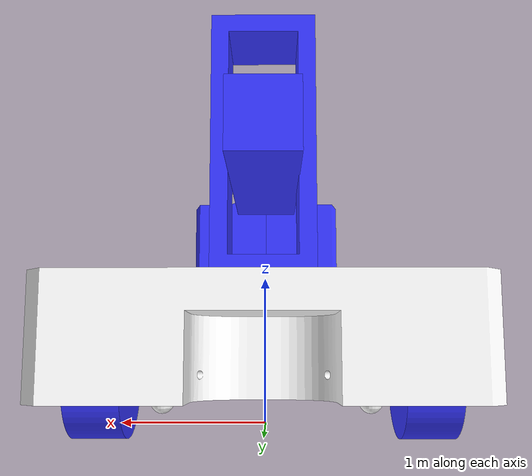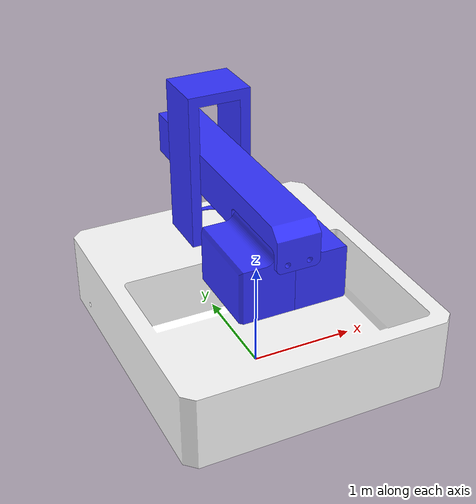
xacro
<?xml version="1.0"?>
<robot xmlns:xacro="http://www.ros.org/wiki/xacro" >
    <xacro:include filename="inertial_macros.xacro" />

    <material name="white">
        <color rgba="1 1 1 1" />
    </material>

    <material name="orange">
        <color rgba="1 0.3 0.1 1"/>
    </material>

    <material name="blue">
        <color rgba="0.2 0.2 1 1"/>
    </material>

    <material name="black">
        <color rgba="0 0 0 1"/>
    </material>

    <material name="red">
        <color rgba="1 0 0 1"/>
    </material>

    <!-- BASE LINK -->

    <link name="base_link">

    </link>

    <joint name="chassis_joint" type="fixed">
        <parent link="base_link"/>
        <child link="chassis"/>
        <origin xyz="0 0 0.1"/>
    </joint>

    <link name="chassis">
        <visual>
            <origin xyz="-1.25 1.5 0" rpy="0 0 0"/>
            <geometry>
                <mesh filename="file://$(find articubot_one)/description/dae/mainbody.dae" scale="0.01 0.01 0.01"/>
            </geometry>
            <material name="white"/>
        </visual>
        <collision>
            <origin xyz="-1.25 1.5 0" rpy="0 0 0"/>
            <geometry>
                <mesh filename="file://$(find articubot_one)/description/dae/mainbody.dae" scale="0.01 0.01 0.01"/>
            </geometry>
        </collision>
        <xacro:inertial_box mass="50.0" x="2.5" y="2.8" z="0.8">
            <origin xyz="0 0.1 0.5" rpy="0 0 0"/>
        </xacro:inertial_box>
    </link>
    <gazebo reference="chassis">
        <material>Gazebo/white</material>
    </gazebo>

    <!-- LEFT WHEEL -->

    <joint name="left_wheel_joint" type="continuous">
        <parent link="base_link"/>
        <child link="left_wheel"/>
        <origin xyz="-0.9 1.05 0.35"/>
        <axis xyz="1 0 0"/>
    </joint>

    <link name="left_wheel">
        <visual>
            <origin xyz="0.15 -0.35 -0.35" rpy="0 -1.57 0"/>
            <geometry>
                <mesh filename="file://$(find articubot_one)/description/dae/wheel.dae" scale="0.01 0.01 0.01"/>
            </geometry>
            <material name="blue"/>
        </visual>
        <collision>
            <origin xyz="0.15 -0.35 -0.35" rpy="0 -1.57 0"/>
            <geometry>
                <mesh filename="file://$(find articubot_one)/description/dae/wheel.dae" scale="0.01 0.01 0.01"/>
            </geometry>
        </collision>
        <xacro:inertial_cylinder mass="20.0" length="0.3" radius="0.35">
            <origin xyz="0 0 0" rpy="0 -1.57 0"/>
        </xacro:inertial_cylinder>
    </link>
    <gazebo reference="left_wheel">
        <material>Gazebo/Blue</material>
        <mu1 value="1.8"/>
        <mu2 value="1.8"/>
    </gazebo>

    <!-- RIGHT WHEEL -->

    <joint name="right_wheel_joint" type="continuous">
        <parent link="base_link"/>
        <child link="right_wheel"/>
        <origin xyz="0.9 1.05 0.35"/>
        <axis xyz="1 0 0"/>
    </joint>

    <link name="right_wheel">
        <visual>
            <origin xyz="0.15 -0.35 -0.35" rpy="0 -1.57 0"/>
            <geometry>
                <mesh filename="file://$(find articubot_one)/description/dae/wheel.dae" scale="0.01 0.01 0.01"/>
            </geometry>
            <material name="blue"/>
        </visual>
        <collision>
            <origin xyz="0.15 -0.35 -0.35" rpy="0 -1.57 0"/>
            <geometry>
                <mesh filename="file://$(find articubot_one)/description/dae/wheel.dae" scale="0.01 0.01 0.01"/>
            </geometry>
        </collision>
        <xacro:inertial_cylinder mass="20.0" length="0.3" radius="0.35">
            <origin xyz="0 0 0" rpy="0 -1.57 0"/>
        </xacro:inertial_cylinder>
    </link>
    <gazebo reference="right_wheel">
        <material>Gazebo/Blue</material>
        <mu1 value="1.8"/>
        <mu2 value="1.8"/>
    </gazebo>

    <!-- CASTER WHEEL -->

    <joint name="casterL_wheel_joint" type="continuous">
        <parent link="base_link"/>
        <child link="casterL_wheel"/>
        <origin xyz="0.85 -0.9 0.1" rpy="0 0 0"/>
        <axis xyz="1 0 0"/>
    </joint>

    <link name="casterL_wheel">
        <visual>
            <geometry>
                <sphere radius="0.1" />
            </geometry>
            <material name="white"/>
        </visual>
        <collision>
            <origin xyz="0 0 0" rpy="0 0 0"/>
            <geometry>
                <sphere radius="0.1" />
            </geometry>
        </collision>
        <xacro:inertial_sphere mass="2.0" radius="0.1">
            <origin xyz="0 0 0" rpy="0 0 0"/>
        </xacro:inertial_sphere>
    </link>
    <gazebo reference="casterL_wheel">
        <material>Gazebo/Blue</material>
        <mu1 value="1.8"/>
        <mu2 value="1.8"/>
    </gazebo>

    <!-- CASTER WHEEL -->

    <joint name="casterR_wheel_joint" type="continuous">
        <parent link="base_link"/>
        <child link="casterR_wheel"/>
        <origin xyz="-0.85 -0.9 0.1" rpy="0 0 0"/>
        <axis xyz="1 0 0"/>
    </joint>

    <link name="casterR_wheel">
        <visual>
            <geometry>
                <sphere radius="0.1" />
            </geometry>
            <material name="white"/>
        </visual>
        <collision>
            <origin xyz="0 0 0" rpy="0 0 0"/>
            <geometry>
                <sphere radius="0.1" />
            </geometry>
        </collision>
        <xacro:inertial_sphere mass="2.0" radius="0.1">
            <origin xyz="0 0 0" rpy="0 0 0"/>
        </xacro:inertial_sphere>
    </link>
    <gazebo reference="casterR_wheel">
        <material>Gazebo/Blue</material>
        <mu1 value="1.8"/>
        <mu2 value="1.8"/>
    </gazebo>

    <!-- ARM 1 -->

    <joint name="arm1_joint" type="revolute">
        <parent link="base_link"/>
        <limit effort="1000.0" lower="0.0" upper="3.12" velocity="0.5"/>
        <child link="arm1"/>
        <origin xyz="-0.005 0.97 0.91"/>
        <axis xyz="0 0 1"/>
        <dynamics damping="1" friction="1"/>
    </joint>

    <link name="arm1">
        <visual>
            <origin xyz="0 0 0" rpy="0 0 0"/>
            <geometry>
                <mesh filename="file://$(find articubot_one)/description/dae/arm1.dae" scale="0.01 0.01 0.01"/>
            </geometry>
            <material name="blue"/>
        </visual>
        <collision>
            <origin xyz="0 0 0" rpy="0 0 0"/>
            <geometry>
                <mesh filename="file://$(find articubot_one)/description/dae/arm1.dae" scale="0.01 0.01 0.01"/>
            </geometry>
        </collision>
        <xacro:inertial_box mass="0.01" x="0.6" y="0.5" z="1.4">
            <origin xyz="0 0.01 0.8" rpy="0 0 0"/>
        </xacro:inertial_box>
    </link>

    <!-- box -->

    <joint name="box_joint" type="prismatic">
        <parent link="arm1"/>
        <child link="box"/>
        <origin xyz="0 0 0.25"/>
        <limit effort="1000.0" lower="0.1" upper="1" velocity="0.5"/>
        <axis xyz="0 0 1"/>
        <dynamics damping="1" friction="15"/>
    </joint>

    <link name="box">
        <visual>
            <origin xyz="0 0 0" rpy="0 0 0"/>
            <geometry>
                <box size="0.2 0.2 0.2"/>
            </geometry>
            <material name="blue"/>
        </visual>
        <collision>
            <origin xyz="0 0 0" rpy="0 0 0"/>
            <geometry>
                <box size="0.6 0.5 0.5"/>
            </geometry>
        </collision>
        <xacro:inertial_box mass="0.01" x="0.5" y="0.5" z="0.1">
            <origin xyz="0 0 0" rpy="0 0 0"/>
        </xacro:inertial_box>
    </link>

    <!-- ARM 3 -->

    <joint name="arm3_joint" type="prismatic">
        <parent link="box"/>
        <child link="arm3"/>
        <origin xyz="0 0 -0.25"/>
        <limit effort="1000.0" lower="0.2" upper="0.8" velocity="0.5"/>
        <axis xyz="0 1 0"/>
        <dynamics damping="1" friction="5"/>
    </joint>

    <link name="arm3">
        <visual>
            <origin xyz="0 0 0" rpy="0 0 0"/>
            <geometry>
                <mesh filename="file://$(find articubot_one)/description/dae/arm3.dae" scale="0.01 0.01 0.01"/>
            </geometry>
            <material name="blue"/>
        </visual>
        <collision>
            <origin xyz="0 0 0" rpy="0 0 0"/>
            <geometry>
                <mesh filename="file://$(find articubot_one)/description/dae/arm3.dae" scale="0.01 0.01 0.01"/>
            </geometry>
        </collision>
        <xacro:inertial_box mass="0.01" x="0.4" y="2.5" z="0.4">
            <origin xyz="0 -1 0.2" rpy="0 0 0"/>
        </xacro:inertial_box>
    </link>

    <!-- ARM 2.1 -->

    <joint name="arm2-1_joint" type="revolute">
        <parent link="arm3"/>
        <child link="arm2-1"/>
        <origin xyz="0.1 -1.4 0.07"/>
        <limit effort="1000.0" lower="-1" upper="0" velocity="0.5"/>
        <axis xyz="0 1 0"/>
        <dynamics damping="0" friction="0"/>
    </joint>

    <link name="arm2-1">
        <visual>
            <origin xyz="0 0 0" rpy="1.57 0 0"/>
            <geometry>
                <mesh filename="file://$(find articubot_one)/description/dae/arm2.dae" scale="0.01 0.01 0.01"/>
            </geometry>
            <material name="blue"/>
        </visual>
        <collision>
            <origin xyz="0 0 0" rpy="1.57 0 0"/>
            <geometry>
                <mesh filename="file://$(find articubot_one)/description/dae/arm2.dae" scale="0.01 0.01 0.01"/>
            </geometry>
        </collision>
        <xacro:inertial_box mass="0.01" x="0.45" y="0.81" z="0.55">
            <origin xyz="0.15 -0.4 -0.25" rpy="0 0 0"/>
        </xacro:inertial_box>
    </link>

    <!-- ARM 2.2 -->

    <joint name="arm2-2_joint" type="revolute">
        <parent link="arm3"/>
        <child link="arm2-2"/>
        <origin xyz="-0.1 -2.2 0.07"/>
        <limit effort="1000.0" lower="0" upper="1" velocity="0.5"/>
        <axis xyz="0 1 0"/>
        <dynamics damping="0" friction="0"/>
    </joint>

    <link name="arm2-2">
        <visual>
            <origin xyz="0 0 0" rpy="1.57 0 3.14"/>
            <geometry>
                <mesh filename="file://$(find articubot_one)/description/dae/arm2.dae" scale="0.01 0.01 0.01"/>
            </geometry>
            <material name="blue"/>
        </visual>
        <collision>
            <origin xyz="0 0 0" rpy="1.57 0 3.14"/>
            <geometry>
                <mesh filename="file://$(find articubot_one)/description/dae/arm2.dae" scale="0.01 0.01 0.01"/>
            </geometry>
        </collision>
        <xacro:inertial_box mass="0.01" x="0.45" y="0.81" z="0.55">
            <origin xyz="-0.15 0.4 -0.25" rpy="0 0 0"/>
        </xacro:inertial_box>
    </link>

</robot>
